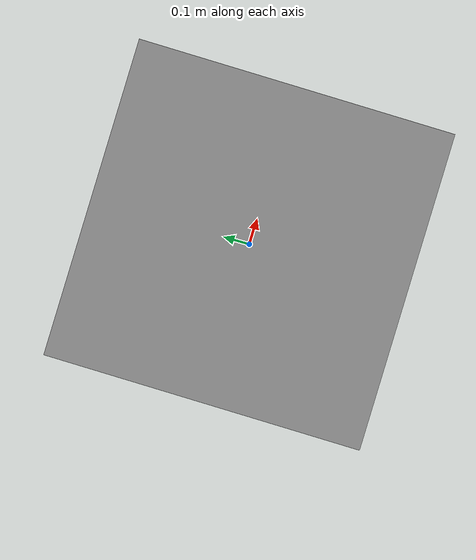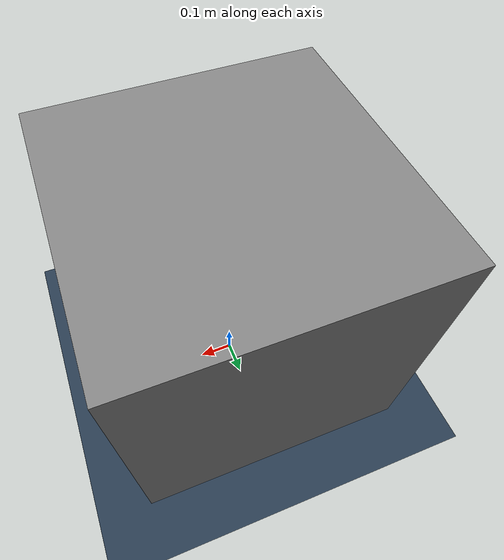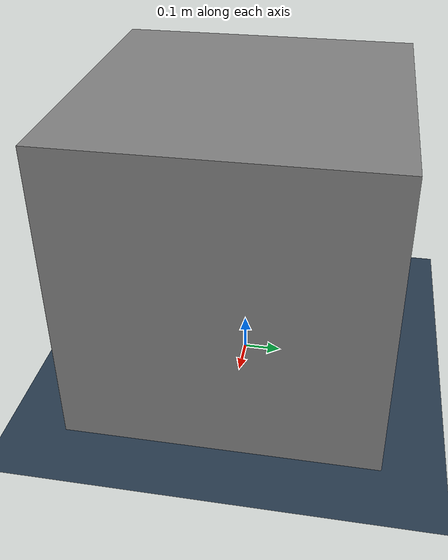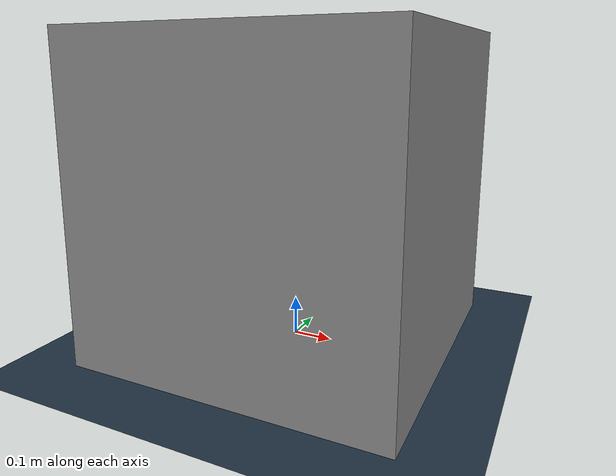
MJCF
<mujoco model="table_arena">
	<asset>
		<texture builtin="gradient" height="256" rgb1=".9 .9 1." rgb2=".2 .3 .4" type="skybox" width="256"/>
		<texture builtin="checker" height="512" name="texplane" rgb1=".2 .3 .4" rgb2=".1 0.15 0.2" type="2d" width="512"/>
		<material name="floorplane" reflectance="0.5" texrepeat="1 1" texture="texplane" texuniform="true"/>
	</asset>
	<worldbody>
		<geom condim="3" material="floorplane" name="floor" pos="0 0 0" size="3 3 .125" type="plane"/>
		<body name="table" pos="0 0 0.4">
			<geom pos="0 0 0" size="0.4 0.4 0.4" type="box" name="table_collision" friction="1 0.005 0.0001"/>
			<geom pos="0 0 0" size="0.399 0.399 0.399" type="box" conaffinity="0" contype="0" group="1" name="table_visual"/>
			<site pos="0 0 0.4" name="table_top" size="0.001 0.001 0.001" rgba="0 0 0 0"/>
		</body>
		<light diffuse=".8 .8 .8" dir="0 -.15 -1" directional="false" pos="1 1 4.0" specular="0.3 0.3 0.3"/>
		<light diffuse=".8 .8 .8" dir="0 -.15 -1" directional="false" pos="-3. -3. 4.0" specular="0.3 0.3 0.3"/>
		<!-- original -->
		<camera mode="fixed" name="camera1" pos="0.8 0 1.65" quat="0.653 0.271 0.271 0.653"/>
		<!-- look down at table -->
		<camera mode="fixed" name="camera2" pos="0.8 0 1.65" quat="0.69342629 0.1384196 0.1384196 0.69342629"/>
		<!-- look sort of at table and robot base -->
		<camera mode="fixed" name="camera3" pos="0.8 0 1.65" quat="0.67651976 0.20572073 0.20572073 0.67651976"/>
		<!-- look all the way down -->
		<camera mode="fixed" name="camera4" pos="0.8 0 1.65" quat="0.707106619 0 0 0.707106619"/>

	</worldbody>
</mujoco>
